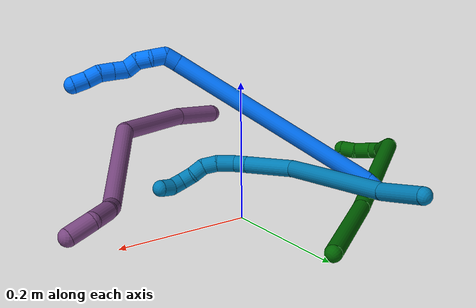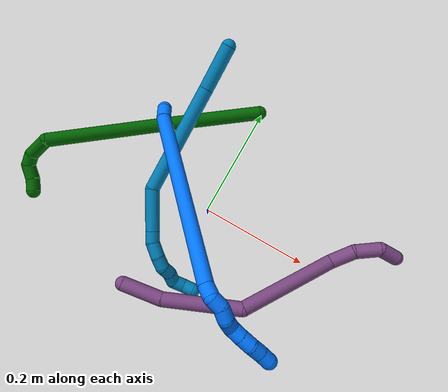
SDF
<sdf version="1.7">
 <world name="default">
  <model name="6">
   <static>0</static>
   <link name="6">
    <collision name="collision-cylinder-e_1_1_4">
     <pose>-0.027351 -0.022806 0.073828 0.29961 -0.340202 -0.051838</pose>
     <geometry><cylinder><radius>0.0125</radius><length>0.163936</length></cylinder></geometry>
     <surface>
      <friction><ode><mu>1.16</mu><mu2>1.16</mu2><slip1>0</slip1><slip2>0</slip2></ode></friction>
      <contact><ode><kp>1e+06</kp><kd>1</kd><max_vel>0</max_vel><min_depth>0.001</min_depth></ode></contact>
     </surface>
    </collision>
    <visual name="visual-cylinder-e_1_1_4">
     <pose>-0.027351 -0.022806 0.073828 0.29961 -0.340202 -0.051838</pose>
     <geometry><cylinder><radius>0.0125</radius><length>0.163936</length></cylinder></geometry>
     <material><ambient>0 0.392157 0.003922 1</ambient></material>
    </visual>
    <collision name="collision-cylinder-e_2_4_5">
     <pose>-0.083004 -0.081049 0.249041 0.336247 -0.25766 -0.043968</pose>
     <geometry><cylinder><radius>0.0125</radius><length>0.222133</length></cylinder></geometry>
     <surface>
      <friction><ode><mu>1.16</mu><mu2>1.16</mu2><slip1>0</slip1><slip2>0</slip2></ode></friction>
      <contact><ode><kp>1e+06</kp><kd>1</kd><max_vel>0</max_vel><min_depth>0.001</min_depth></ode></contact>
     </surface>
    </collision>
    <visual name="visual-cylinder-e_2_4_5">
     <pose>-0.083004 -0.081049 0.249041 0.336247 -0.25766 -0.043968</pose>
     <geometry><cylinder><radius>0.0125</radius><length>0.222133</length></cylinder></geometry>
     <material><ambient>0 0.392157 0.003922 1</ambient></material>
    </visual>
    <collision name="collision-cylinder-e_3_5_6">
     <pose>-0.127585 -0.127918 0.359484 0.900847 -0.840232 -0.425501</pose>
     <geometry><cylinder><radius>0.0125</radius><length>0.043715</length></cylinder></geometry>
     <surface>
      <friction><ode><mu>1.16</mu><mu2>1.16</mu2><slip1>0</slip1><slip2>0</slip2></ode></friction>
      <contact><ode><kp>1e+06</kp><kd>1</kd><max_vel>0</max_vel><min_depth>0.001</min_depth></ode></contact>
     </surface>
    </collision>
    <visual name="visual-cylinder-e_3_5_6">
     <pose>-0.127585 -0.127918 0.359484 0.900847 -0.840232 -0.425501</pose>
     <geometry><cylinder><radius>0.0125</radius><length>0.043715</length></cylinder></geometry>
     <material><ambient>0 0.392157 0.003922 1</ambient></material>
    </visual>
    <collision name="collision-cylinder-e_4_6_7">
     <pose>-0.149194 -0.148634 0.369438 1.47444 -0.519129 -0.473219</pose>
     <geometry><cylinder><radius>0.0125</radius><length>0.021483</length></cylinder></geometry>
     <surface>
      <friction><ode><mu>1.16</mu><mu2>1.16</mu2><slip1>0</slip1><slip2>0</slip2></ode></friction>
      <contact><ode><kp>1e+06</kp><kd>1</kd><max_vel>0</max_vel><min_depth>0.001</min_depth></ode></contact>
     </surface>
    </collision>
    <visual name="visual-cylinder-e_4_6_7">
     <pose>-0.149194 -0.148634 0.369438 1.47444 -0.519129 -0.473219</pose>
     <geometry><cylinder><radius>0.0125</radius><length>0.021483</length></cylinder></geometry>
     <material><ambient>0 0.392157 0.003922 1</ambient></material>
    </visual>
    <collision name="collision-cylinder-e_5_7_8">
     <pose>-0.156193 -0.169329 0.363762 2.09334 -0.126141 -0.217644</pose>
     <geometry><cylinder><radius>0.0125</radius><length>0.02655</length></cylinder></geometry>
     <surface>
      <friction><ode><mu>1.16</mu><mu2>1.16</mu2><slip1>0</slip1><slip2>0</slip2></ode></friction>
      <contact><ode><kp>1e+06</kp><kd>1</kd><max_vel>0</max_vel><min_depth>0.001</min_depth></ode></contact>
     </surface>
    </collision>
    <visual name="visual-cylinder-e_5_7_8">
     <pose>-0.156193 -0.169329 0.363762 2.09334 -0.126141 -0.217644</pose>
     <geometry><cylinder><radius>0.0125</radius><length>0.02655</length></cylinder></geometry>
     <material><ambient>0 0.392157 0.003922 1</ambient></material>
    </visual>
    <collision name="collision-cylinder-e_6_8_2">
     <pose>-0.158885 -0.191376 0.354212 1.84376 -0.09224 -0.121545</pose>
     <geometry><cylinder><radius>0.0125</radius><length>0.022182</length></cylinder></geometry>
     <surface>
      <friction><ode><mu>1.16</mu><mu2>1.16</mu2><slip1>0</slip1><slip2>0</slip2></ode></friction>
      <contact><ode><kp>1e+06</kp><kd>1</kd><max_vel>0</max_vel><min_depth>0.001</min_depth></ode></contact>
     </surface>
    </collision>
    <visual name="visual-cylinder-e_6_8_2">
     <pose>-0.158885 -0.191376 0.354212 1.84376 -0.09224 -0.121545</pose>
     <geometry><cylinder><radius>0.0125</radius><length>0.022182</length></cylinder></geometry>
     <material><ambient>0 0.392157 0.003922 1</ambient></material>
    </visual>
    <collision name="collision-sphere-2">
     <pose>-0.159906 -0.202011 0.351235 0 -0 0</pose>
     <geometry><sphere><radius>0.0125</radius></sphere></geometry>
     <surface>
      <friction><ode><mu>1.16</mu><mu2>1.16</mu2><slip1>0</slip1><slip2>0</slip2></ode></friction>
      <contact><ode><kp>1e+06</kp><kd>1</kd><max_vel>0</max_vel><min_depth>0.001</min_depth></ode></contact>
     </surface>
    </collision>
    <visual name="visual-sphere-2">
     <pose>-0.159906 -0.202011 0.351235 0 -0 0</pose>
     <geometry><sphere><radius>0.0125</radius></sphere></geometry>
     <material><ambient>0 0.392157 0.003922 1</ambient></material>
    </visual>
    <collision name="collision-sphere-4">
     <pose>-0.054702 -0.045612 0.147656 0 -0 0</pose>
     <geometry><sphere><radius>0.0125</radius></sphere></geometry>
     <surface>
      <friction><ode><mu>1.16</mu><mu2>1.16</mu2><slip1>0</slip1><slip2>0</slip2></ode></friction>
      <contact><ode><kp>1e+06</kp><kd>1</kd><max_vel>0</max_vel><min_depth>0.001</min_depth></ode></contact>
     </surface>
    </collision>
    <visual name="visual-sphere-4">
     <pose>-0.054702 -0.045612 0.147656 0 -0 0</pose>
     <geometry><sphere><radius>0.0125</radius></sphere></geometry>
     <material><ambient>0 0.392157 0.003922 1</ambient></material>
    </visual>
    <collision name="collision-sphere-1">
     <geometry><sphere><radius>0.0125</radius></sphere></geometry>
     <surface>
      <friction><ode><mu>1.16</mu><mu2>1.16</mu2><slip1>0</slip1><slip2>0</slip2></ode></friction>
      <contact><ode><kp>1e+06</kp><kd>1</kd><max_vel>0</max_vel><min_depth>0.001</min_depth></ode></contact>
     </surface>
    </collision>
    <visual name="visual-sphere-1">
     <geometry><sphere><radius>0.0125</radius></sphere></geometry>
     <material><ambient>0 0.392157 0.003922 1</ambient></material>
    </visual>
    <collision name="collision-sphere-8">
     <pose>-0.157863 -0.180741 0.357189 0 -0 0</pose>
     <geometry><sphere><radius>0.0125</radius></sphere></geometry>
     <surface>
      <friction><ode><mu>1.16</mu><mu2>1.16</mu2><slip1>0</slip1><slip2>0</slip2></ode></friction>
      <contact><ode><kp>1e+06</kp><kd>1</kd><max_vel>0</max_vel><min_depth>0.001</min_depth></ode></contact>
     </surface>
    </collision>
    <visual name="visual-sphere-8">
     <pose>-0.157863 -0.180741 0.357189 0 -0 0</pose>
     <geometry><sphere><radius>0.0125</radius></sphere></geometry>
     <material><ambient>0 0.392157 0.003922 1</ambient></material>
    </visual>
    <collision name="collision-sphere-5">
     <pose>-0.111305 -0.116485 0.350427 0 -0 0</pose>
     <geometry><sphere><radius>0.0125</radius></sphere></geometry>
     <surface>
      <friction><ode><mu>1.16</mu><mu2>1.16</mu2><slip1>0</slip1><slip2>0</slip2></ode></friction>
      <contact><ode><kp>1e+06</kp><kd>1</kd><max_vel>0</max_vel><min_depth>0.001</min_depth></ode></contact>
     </surface>
    </collision>
    <visual name="visual-sphere-5">
     <pose>-0.111305 -0.116485 0.350427 0 -0 0</pose>
     <geometry><sphere><radius>0.0125</radius></sphere></geometry>
     <material><ambient>0 0.392157 0.003922 1</ambient></material>
    </visual>
    <collision name="collision-sphere-6">
     <pose>-0.143864 -0.13935 0.368541 0 -0 0</pose>
     <geometry><sphere><radius>0.0125</radius></sphere></geometry>
     <surface>
      <friction><ode><mu>1.16</mu><mu2>1.16</mu2><slip1>0</slip1><slip2>0</slip2></ode></friction>
      <contact><ode><kp>1e+06</kp><kd>1</kd><max_vel>0</max_vel><min_depth>0.001</min_depth></ode></contact>
     </surface>
    </collision>
    <visual name="visual-sphere-6">
     <pose>-0.143864 -0.13935 0.368541 0 -0 0</pose>
     <geometry><sphere><radius>0.0125</radius></sphere></geometry>
     <material><ambient>0 0.392157 0.003922 1</ambient></material>
    </visual>
    <collision name="collision-sphere-7">
     <pose>-0.154523 -0.157917 0.370335 0 -0 0</pose>
     <geometry><sphere><radius>0.0125</radius></sphere></geometry>
     <surface>
      <friction><ode><mu>1.16</mu><mu2>1.16</mu2><slip1>0</slip1><slip2>0</slip2></ode></friction>
      <contact><ode><kp>1e+06</kp><kd>1</kd><max_vel>0</max_vel><min_depth>0.001</min_depth></ode></contact>
     </surface>
    </collision>
    <visual name="visual-sphere-7">
     <pose>-0.154523 -0.157917 0.370335 0 -0 0</pose>
     <geometry><sphere><radius>0.0125</radius></sphere></geometry>
     <material><ambient>0 0.392157 0.003922 1</ambient></material>
    </visual>
    <inertial>
     <pose>-0.078751 -0.078537 0.21718 0 -0 0</pose>
     <mass>0.5</mass>
     <inertia><ixx>0.00118</ixx><ixy>0</ixy><ixz>0</ixz><iyy>0.00116</iyy><iyz>0</iyz><izz>0.000803</izz></inertia>
    </inertial>
   </link>
   <pose>-0.005513 0.20108 0.012425 -0.648629 -1.18127 0.972623</pose>
  </model>
  <model name="9">
   <static>0</static>
   <link name="9">
    <collision name="collision-cylinder-e_1_1_4">
     <pose>0.010537 -0.012798 0.036491 0.337317 0.26602 0.045558</pose>
     <geometry><cylinder><radius>0.0125</radius><length>0.080159</length></cylinder></geometry>
     <surface>
      <friction><ode><mu>1.16</mu><mu2>1.16</mu2><slip1>0</slip1><slip2>0</slip2></ode></friction>
      <contact><ode><kp>1e+06</kp><kd>1</kd><max_vel>0</max_vel><min_depth>0.001</min_depth></ode></contact>
     </surface>
    </collision>
    <visual name="visual-cylinder-e_1_1_4">
     <pose>0.010537 -0.012798 0.036491 0.337317 0.26602 0.045558</pose>
     <geometry><cylinder><radius>0.0125</radius><length>0.080159</length></cylinder></geometry>
     <material><ambient>0 0.490196 0.709804 1</ambient></material>
    </visual>
    <collision name="collision-cylinder-e_2_4_5">
     <pose>0.038855 -0.050789 0.165515 0.265817 0.183333 0.024579</pose>
     <geometry><cylinder><radius>0.0125</radius><length>0.195074</length></cylinder></geometry>
     <surface>
      <friction><ode><mu>1.16</mu><mu2>1.16</mu2><slip1>0</slip1><slip2>0</slip2></ode></friction>
      <contact><ode><kp>1e+06</kp><kd>1</kd><max_vel>0</max_vel><min_depth>0.001</min_depth></ode></contact>
     </surface>
    </collision>
    <visual name="visual-cylinder-e_2_4_5">
     <pose>0.038855 -0.050789 0.165515 0.265817 0.183333 0.024579</pose>
     <geometry><cylinder><radius>0.0125</radius><length>0.195074</length></cylinder></geometry>
     <material><ambient>0 0.490196 0.709804 1</ambient></material>
    </visual>
    <collision name="collision-cylinder-e_3_5_6">
     <pose>0.072984 -0.069911 0.290905 -0.182725 0.45503 -0.042417</pose>
     <geometry><cylinder><radius>0.0125</radius><length>0.074393</length></cylinder></geometry>
     <surface>
      <friction><ode><mu>1.16</mu><mu2>1.16</mu2><slip1>0</slip1><slip2>0</slip2></ode></friction>
      <contact><ode><kp>1e+06</kp><kd>1</kd><max_vel>0</max_vel><min_depth>0.001</min_depth></ode></contact>
     </surface>
    </collision>
    <visual name="visual-cylinder-e_3_5_6">
     <pose>0.072984 -0.069911 0.290905 -0.182725 0.45503 -0.042417</pose>
     <geometry><cylinder><radius>0.0125</radius><length>0.074393</length></cylinder></geometry>
     <material><ambient>0 0.490196 0.709804 1</ambient></material>
    </visual>
    <collision name="collision-cylinder-e_4_6_7">
     <pose>0.093809 -0.062213 0.332743 -0.179246 0.455975 -0.041695</pose>
     <geometry><cylinder><radius>0.0125</radius><length>0.020335</length></cylinder></geometry>
     <surface>
      <friction><ode><mu>1.16</mu><mu2>1.16</mu2><slip1>0</slip1><slip2>0</slip2></ode></friction>
      <contact><ode><kp>1e+06</kp><kd>1</kd><max_vel>0</max_vel><min_depth>0.001</min_depth></ode></contact>
     </surface>
    </collision>
    <visual name="visual-cylinder-e_4_6_7">
     <pose>0.093809 -0.062213 0.332743 -0.179246 0.455975 -0.041695</pose>
     <geometry><cylinder><radius>0.0125</radius><length>0.020335</length></cylinder></geometry>
     <material><ambient>0 0.490196 0.709804 1</ambient></material>
    </visual>
    <collision name="collision-cylinder-e_5_7_8">
     <pose>0.105923 -0.054622 0.351399 -0.552392 0.591721 -0.172361</pose>
     <geometry><cylinder><radius>0.0125</radius><length>0.027382</length></cylinder></geometry>
     <surface>
      <friction><ode><mu>1.16</mu><mu2>1.16</mu2><slip1>0</slip1><slip2>0</slip2></ode></friction>
      <contact><ode><kp>1e+06</kp><kd>1</kd><max_vel>0</max_vel><min_depth>0.001</min_depth></ode></contact>
     </surface>
    </collision>
    <visual name="visual-cylinder-e_5_7_8">
     <pose>0.105923 -0.054622 0.351399 -0.552392 0.591721 -0.172361</pose>
     <geometry><cylinder><radius>0.0125</radius><length>0.027382</length></cylinder></geometry>
     <material><ambient>0 0.490196 0.709804 1</ambient></material>
    </visual>
    <collision name="collision-cylinder-e_6_8_9">
     <pose>0.121522 -0.045218 0.367678 -0.480304 0.81871 -0.211693</pose>
     <geometry><cylinder><radius>0.0125</radius><length>0.021806</length></cylinder></geometry>
     <surface>
      <friction><ode><mu>1.16</mu><mu2>1.16</mu2><slip1>0</slip1><slip2>0</slip2></ode></friction>
      <contact><ode><kp>1e+06</kp><kd>1</kd><max_vel>0</max_vel><min_depth>0.001</min_depth></ode></contact>
     </surface>
    </collision>
    <visual name="visual-cylinder-e_6_8_9">
     <pose>0.121522 -0.045218 0.367678 -0.480304 0.81871 -0.211693</pose>
     <geometry><cylinder><radius>0.0125</radius><length>0.021806</length></cylinder></geometry>
     <material><ambient>0 0.490196 0.709804 1</ambient></material>
    </visual>
    <collision name="collision-cylinder-e_7_9_10">
     <pose>0.139149 -0.039715 0.376326 -0.79023 1.27916 -0.601644</pose>
     <geometry><cylinder><radius>0.0125</radius><length>0.020183</length></cylinder></geometry>
     <surface>
      <friction><ode><mu>1.16</mu><mu2>1.16</mu2><slip1>0</slip1><slip2>0</slip2></ode></friction>
      <contact><ode><kp>1e+06</kp><kd>1</kd><max_vel>0</max_vel><min_depth>0.001</min_depth></ode></contact>
     </surface>
    </collision>
    <visual name="visual-cylinder-e_7_9_10">
     <pose>0.139149 -0.039715 0.376326 -0.79023 1.27916 -0.601644</pose>
     <geometry><cylinder><radius>0.0125</radius><length>0.020183</length></cylinder></geometry>
     <material><ambient>0 0.490196 0.709804 1</ambient></material>
    </visual>
    <collision name="collision-cylinder-e_8_10_11">
     <pose>0.157763 -0.037161 0.383187 -0.101799 1.07456 -0.06068</pose>
     <geometry><cylinder><radius>0.0125</radius><length>0.020351</length></cylinder></geometry>
     <surface>
      <friction><ode><mu>1.16</mu><mu2>1.16</mu2><slip1>0</slip1><slip2>0</slip2></ode></friction>
      <contact><ode><kp>1e+06</kp><kd>1</kd><max_vel>0</max_vel><min_depth>0.001</min_depth></ode></contact>
     </surface>
    </collision>
    <visual name="visual-cylinder-e_8_10_11">
     <pose>0.157763 -0.037161 0.383187 -0.101799 1.07456 -0.06068</pose>
     <geometry><cylinder><radius>0.0125</radius><length>0.020351</length></cylinder></geometry>
     <material><ambient>0 0.490196 0.709804 1</ambient></material>
    </visual>
    <collision name="collision-cylinder-e_9_11_12">
     <pose>0.174751 -0.0305 0.387678 -1.62407 0.91562 -0.958564</pose>
     <geometry><cylinder><radius>0.0125</radius><length>0.020278</length></cylinder></geometry>
     <surface>
      <friction><ode><mu>1.16</mu><mu2>1.16</mu2><slip1>0</slip1><slip2>0</slip2></ode></friction>
      <contact><ode><kp>1e+06</kp><kd>1</kd><max_vel>0</max_vel><min_depth>0.001</min_depth></ode></contact>
     </surface>
    </collision>
    <visual name="visual-cylinder-e_9_11_12">
     <pose>0.174751 -0.0305 0.387678 -1.62407 0.91562 -0.958564</pose>
     <geometry><cylinder><radius>0.0125</radius><length>0.020278</length></cylinder></geometry>
     <material><ambient>0 0.490196 0.709804 1</ambient></material>
    </visual>
    <collision name="collision-cylinder-e_10_12_2">
     <pose>0.187994 -0.015776 0.387686 -1.53137 0.54612 -0.525981</pose>
     <geometry><cylinder><radius>0.0125</radius><length>0.020038</length></cylinder></geometry>
     <surface>
      <friction><ode><mu>1.16</mu><mu2>1.16</mu2><slip1>0</slip1><slip2>0</slip2></ode></friction>
      <contact><ode><kp>1e+06</kp><kd>1</kd><max_vel>0</max_vel><min_depth>0.001</min_depth></ode></contact>
     </surface>
    </collision>
    <visual name="visual-cylinder-e_10_12_2">
     <pose>0.187994 -0.015776 0.387686 -1.53137 0.54612 -0.525981</pose>
     <geometry><cylinder><radius>0.0125</radius><length>0.020038</length></cylinder></geometry>
     <material><ambient>0 0.490196 0.709804 1</ambient></material>
    </visual>
    <collision name="collision-sphere-2">
     <pose>0.193198 -0.007221 0.388024 0 -0 0</pose>
     <geometry><sphere><radius>0.0125</radius></sphere></geometry>
     <surface>
      <friction><ode><mu>1.16</mu><mu2>1.16</mu2><slip1>0</slip1><slip2>0</slip2></ode></friction>
      <contact><ode><kp>1e+06</kp><kd>1</kd><max_vel>0</max_vel><min_depth>0.001</min_depth></ode></contact>
     </surface>
    </collision>
    <visual name="visual-sphere-2">
     <pose>0.193198 -0.007221 0.388024 0 -0 0</pose>
     <geometry><sphere><radius>0.0125</radius></sphere></geometry>
     <material><ambient>0 0.490196 0.709804 1</ambient></material>
    </visual>
    <collision name="collision-sphere-12">
     <pose>0.18279 -0.024331 0.387349 0 -0 0</pose>
     <geometry><sphere><radius>0.0125</radius></sphere></geometry>
     <surface>
      <friction><ode><mu>1.16</mu><mu2>1.16</mu2><slip1>0</slip1><slip2>0</slip2></ode></friction>
      <contact><ode><kp>1e+06</kp><kd>1</kd><max_vel>0</max_vel><min_depth>0.001</min_depth></ode></contact>
     </surface>
    </collision>
    <visual name="visual-sphere-12">
     <pose>0.18279 -0.024331 0.387349 0 -0 0</pose>
     <geometry><sphere><radius>0.0125</radius></sphere></geometry>
     <material><ambient>0 0.490196 0.709804 1</ambient></material>
    </visual>
    <collision name="collision-sphere-11">
     <pose>0.166711 -0.036669 0.388007 0 -0 0</pose>
     <geometry><sphere><radius>0.0125</radius></sphere></geometry>
     <surface>
      <friction><ode><mu>1.16</mu><mu2>1.16</mu2><slip1>0</slip1><slip2>0</slip2></ode></friction>
      <contact><ode><kp>1e+06</kp><kd>1</kd><max_vel>0</max_vel><min_depth>0.001</min_depth></ode></contact>
     </surface>
    </collision>
    <visual name="visual-sphere-11">
     <pose>0.166711 -0.036669 0.388007 0 -0 0</pose>
     <geometry><sphere><radius>0.0125</radius></sphere></geometry>
     <material><ambient>0 0.490196 0.709804 1</ambient></material>
    </visual>
    <collision name="collision-sphere-10">
     <pose>0.148815 -0.037653 0.378368 0 -0 0</pose>
     <geometry><sphere><radius>0.0125</radius></sphere></geometry>
     <surface>
      <friction><ode><mu>1.16</mu><mu2>1.16</mu2><slip1>0</slip1><slip2>0</slip2></ode></friction>
      <contact><ode><kp>1e+06</kp><kd>1</kd><max_vel>0</max_vel><min_depth>0.001</min_depth></ode></contact>
     </surface>
    </collision>
    <visual name="visual-sphere-10">
     <pose>0.148815 -0.037653 0.378368 0 -0 0</pose>
     <geometry><sphere><radius>0.0125</radius></sphere></geometry>
     <material><ambient>0 0.490196 0.709804 1</ambient></material>
    </visual>
    <collision name="collision-sphere-9">
     <pose>0.129484 -0.041776 0.374284 0 -0 0</pose>
     <geometry><sphere><radius>0.0125</radius></sphere></geometry>
     <surface>
      <friction><ode><mu>1.16</mu><mu2>1.16</mu2><slip1>0</slip1><slip2>0</slip2></ode></friction>
      <contact><ode><kp>1e+06</kp><kd>1</kd><max_vel>0</max_vel><min_depth>0.001</min_depth></ode></contact>
     </surface>
    </collision>
    <visual name="visual-sphere-9">
     <pose>0.129484 -0.041776 0.374284 0 -0 0</pose>
     <geometry><sphere><radius>0.0125</radius></sphere></geometry>
     <material><ambient>0 0.490196 0.709804 1</ambient></material>
    </visual>
    <collision name="collision-sphere-4">
     <pose>0.021073 -0.025596 0.072981 0 -0 0</pose>
     <geometry><sphere><radius>0.0125</radius></sphere></geometry>
     <surface>
      <friction><ode><mu>1.16</mu><mu2>1.16</mu2><slip1>0</slip1><slip2>0</slip2></ode></friction>
      <contact><ode><kp>1e+06</kp><kd>1</kd><max_vel>0</max_vel><min_depth>0.001</min_depth></ode></contact>
     </surface>
    </collision>
    <visual name="visual-sphere-4">
     <pose>0.021073 -0.025596 0.072981 0 -0 0</pose>
     <geometry><sphere><radius>0.0125</radius></sphere></geometry>
     <material><ambient>0 0.490196 0.709804 1</ambient></material>
    </visual>
    <collision name="collision-sphere-1">
     <geometry><sphere><radius>0.0125</radius></sphere></geometry>
     <surface>
      <friction><ode><mu>1.16</mu><mu2>1.16</mu2><slip1>0</slip1><slip2>0</slip2></ode></friction>
      <contact><ode><kp>1e+06</kp><kd>1</kd><max_vel>0</max_vel><min_depth>0.001</min_depth></ode></contact>
     </surface>
    </collision>
    <visual name="visual-sphere-1">
     <geometry><sphere><radius>0.0125</radius></sphere></geometry>
     <material><ambient>0 0.490196 0.709804 1</ambient></material>
    </visual>
    <collision name="collision-sphere-8">
     <pose>0.11356 -0.04866 0.361072 0 -0 0</pose>
     <geometry><sphere><radius>0.0125</radius></sphere></geometry>
     <surface>
      <friction><ode><mu>1.16</mu><mu2>1.16</mu2><slip1>0</slip1><slip2>0</slip2></ode></friction>
      <contact><ode><kp>1e+06</kp><kd>1</kd><max_vel>0</max_vel><min_depth>0.001</min_depth></ode></contact>
     </surface>
    </collision>
    <visual name="visual-sphere-8">
     <pose>0.11356 -0.04866 0.361072 0 -0 0</pose>
     <geometry><sphere><radius>0.0125</radius></sphere></geometry>
     <material><ambient>0 0.490196 0.709804 1</ambient></material>
    </visual>
    <collision name="collision-sphere-5">
     <pose>0.056637 -0.075983 0.25805 0 -0 0</pose>
     <geometry><sphere><radius>0.0125</radius></sphere></geometry>
     <surface>
      <friction><ode><mu>1.16</mu><mu2>1.16</mu2><slip1>0</slip1><slip2>0</slip2></ode></friction>
      <contact><ode><kp>1e+06</kp><kd>1</kd><max_vel>0</max_vel><min_depth>0.001</min_depth></ode></contact>
     </surface>
    </collision>
    <visual name="visual-sphere-5">
     <pose>0.056637 -0.075983 0.25805 0 -0 0</pose>
     <geometry><sphere><radius>0.0125</radius></sphere></geometry>
     <material><ambient>0 0.490196 0.709804 1</ambient></material>
    </visual>
    <collision name="collision-sphere-6">
     <pose>0.089332 -0.06384 0.323761 0 -0 0</pose>
     <geometry><sphere><radius>0.0125</radius></sphere></geometry>
     <surface>
      <friction><ode><mu>1.16</mu><mu2>1.16</mu2><slip1>0</slip1><slip2>0</slip2></ode></friction>
      <contact><ode><kp>1e+06</kp><kd>1</kd><max_vel>0</max_vel><min_depth>0.001</min_depth></ode></contact>
     </surface>
    </collision>
    <visual name="visual-sphere-6">
     <pose>0.089332 -0.06384 0.323761 0 -0 0</pose>
     <geometry><sphere><radius>0.0125</radius></sphere></geometry>
     <material><ambient>0 0.490196 0.709804 1</ambient></material>
    </visual>
    <collision name="collision-sphere-7">
     <pose>0.098286 -0.060585 0.341726 0 -0 0</pose>
     <geometry><sphere><radius>0.0125</radius></sphere></geometry>
     <surface>
      <friction><ode><mu>1.16</mu><mu2>1.16</mu2><slip1>0</slip1><slip2>0</slip2></ode></friction>
      <contact><ode><kp>1e+06</kp><kd>1</kd><max_vel>0</max_vel><min_depth>0.001</min_depth></ode></contact>
     </surface>
    </collision>
    <visual name="visual-sphere-7">
     <pose>0.098286 -0.060585 0.341726 0 -0 0</pose>
     <geometry><sphere><radius>0.0125</radius></sphere></geometry>
     <material><ambient>0 0.490196 0.709804 1</ambient></material>
    </visual>
    <inertial>
     <pose>0.069283 -0.044747 0.224567 0 -0 0</pose>
     <mass>0.5</mass>
     <inertia>
      <ixx>0.000729</ixx>
      <ixy>0</ixy>
      <ixz>0</ixz>
      <iyy>0.000708</iyy>
      <iyz>0</iyz>
      <izz>4.5e-05</izz>
     </inertia>
    </inertial>
   </link>
   <pose>-0.107364 0.257872 0.086683 1.24509 0.867544 -0.148208</pose>
  </model>
  <model name="14">
   <static>0</static>
   <link name="14">
    <collision name="collision-cylinder-e_1_1_4">
     <pose>0.011012 -0.002391 -0.0031 2.48459 1.22923 2.24181</pose>
     <geometry><cylinder><radius>0.0125</radius><length>0.023375</length></cylinder></geometry>
     <surface>
      <friction><ode><mu>1.16</mu><mu2>1.16</mu2><slip1>0</slip1><slip2>0</slip2></ode></friction>
      <contact><ode><kp>1e+06</kp><kd>1</kd><max_vel>0</max_vel><min_depth>0.001</min_depth></ode></contact>
     </surface>
    </collision>
    <visual name="visual-cylinder-e_1_1_4">
     <pose>0.011012 -0.002391 -0.0031 2.48459 1.22923 2.24181</pose>
     <geometry><cylinder><radius>0.0125</radius><length>0.023375</length></cylinder></geometry>
     <material><ambient>0 0.462745 1 1</ambient></material>
    </visual>
    <collision name="collision-cylinder-e_2_4_5">
     <pose>0.152249 -0.063137 -0.074077 2.43149 0.968593 1.91376</pose>
     <geometry><cylinder><radius>0.0125</radius><length>0.316045</length></cylinder></geometry>
     <surface>
      <friction><ode><mu>1.16</mu><mu2>1.16</mu2><slip1>0</slip1><slip2>0</slip2></ode></friction>
      <contact><ode><kp>1e+06</kp><kd>1</kd><max_vel>0</max_vel><min_depth>0.001</min_depth></ode></contact>
     </surface>
    </collision>
    <visual name="visual-cylinder-e_2_4_5">
     <pose>0.152249 -0.063137 -0.074077 2.43149 0.968593 1.91376</pose>
     <geometry><cylinder><radius>0.0125</radius><length>0.316045</length></cylinder></geometry>
     <material><ambient>0 0.462745 1 1</ambient></material>
    </visual>
    <collision name="collision-cylinder-e_3_5_6">
     <pose>0.289829 -0.125369 -0.147855 2.56019 0.805896 1.91766</pose>
     <geometry><cylinder><radius>0.0125</radius><length>0.020391</length></cylinder></geometry>
     <surface>
      <friction><ode><mu>1.16</mu><mu2>1.16</mu2><slip1>0</slip1><slip2>0</slip2></ode></friction>
      <contact><ode><kp>1e+06</kp><kd>1</kd><max_vel>0</max_vel><min_depth>0.001</min_depth></ode></contact>
     </surface>
    </collision>
    <visual name="visual-cylinder-e_3_5_6">
     <pose>0.289829 -0.125369 -0.147855 2.56019 0.805896 1.91766</pose>
     <geometry><cylinder><radius>0.0125</radius><length>0.020391</length></cylinder></geometry>
     <material><ambient>0 0.462745 1 1</ambient></material>
    </visual>
    <collision name="collision-cylinder-e_4_6_7">
     <pose>0.299504 -0.138013 -0.158138 2.0344 0.232388 0.373298</pose>
     <geometry><cylinder><radius>0.0125</radius><length>0.020144</length></cylinder></geometry>
     <surface>
      <friction><ode><mu>1.16</mu><mu2>1.16</mu2><slip1>0</slip1><slip2>0</slip2></ode></friction>
      <contact><ode><kp>1e+06</kp><kd>1</kd><max_vel>0</max_vel><min_depth>0.001</min_depth></ode></contact>
     </surface>
    </collision>
    <visual name="visual-cylinder-e_4_6_7">
     <pose>0.299504 -0.138013 -0.158138 2.0344 0.232388 0.373298</pose>
     <geometry><cylinder><radius>0.0125</radius><length>0.020144</length></cylinder></geometry>
     <material><ambient>0 0.462745 1 1</ambient></material>
    </visual>
    <collision name="collision-cylinder-e_5_7_8">
     <pose>0.306249 -0.155704 -0.163483 1.6782 0.458058 0.507997</pose>
     <geometry><cylinder><radius>0.0125</radius><length>0.020016</length></cylinder></geometry>
     <surface>
      <friction><ode><mu>1.16</mu><mu2>1.16</mu2><slip1>0</slip1><slip2>0</slip2></ode></friction>
      <contact><ode><kp>1e+06</kp><kd>1</kd><max_vel>0</max_vel><min_depth>0.001</min_depth></ode></contact>
     </surface>
    </collision>
    <visual name="visual-cylinder-e_5_7_8">
     <pose>0.306249 -0.155704 -0.163483 1.6782 0.458058 0.507997</pose>
     <geometry><cylinder><radius>0.0125</radius><length>0.020016</length></cylinder></geometry>
     <material><ambient>0 0.462745 1 1</ambient></material>
    </visual>
    <collision name="collision-cylinder-e_6_8_9">
     <pose>0.310876 -0.174592 -0.163517 1.47795 0.020131 0.018343</pose>
     <geometry><cylinder><radius>0.0125</radius><length>0.020016</length></cylinder></geometry>
     <surface>
      <friction><ode><mu>1.16</mu><mu2>1.16</mu2><slip1>0</slip1><slip2>0</slip2></ode></friction>
      <contact><ode><kp>1e+06</kp><kd>1</kd><max_vel>0</max_vel><min_depth>0.001</min_depth></ode></contact>
     </surface>
    </collision>
    <visual name="visual-cylinder-e_6_8_9">
     <pose>0.310876 -0.174592 -0.163517 1.47795 0.020131 0.018343</pose>
     <geometry><cylinder><radius>0.0125</radius><length>0.020016</length></cylinder></geometry>
     <material><ambient>0 0.462745 1 1</ambient></material>
    </visual>
    <collision name="collision-cylinder-e_7_9_10">
     <pose>0.313436 -0.19282 -0.167709 2.12536 0.238002 0.422985</pose>
     <geometry><cylinder><radius>0.0125</radius><length>0.020008</length></cylinder></geometry>
     <surface>
      <friction><ode><mu>1.16</mu><mu2>1.16</mu2><slip1>0</slip1><slip2>0</slip2></ode></friction>
      <contact><ode><kp>1e+06</kp><kd>1</kd><max_vel>0</max_vel><min_depth>0.001</min_depth></ode></contact>
     </surface>
    </collision>
    <visual name="visual-cylinder-e_7_9_10">
     <pose>0.313436 -0.19282 -0.167709 2.12536 0.238002 0.422985</pose>
     <geometry><cylinder><radius>0.0125</radius><length>0.020008</length></cylinder></geometry>
     <material><ambient>0 0.462745 1 1</ambient></material>
    </visual>
    <collision name="collision-cylinder-e_8_10_11">
     <pose>0.317806 -0.209344 -0.178096 2.13856 0.202456 0.366374</pose>
     <geometry><cylinder><radius>0.0125</radius><length>0.020001</length></cylinder></geometry>
     <surface>
      <friction><ode><mu>1.16</mu><mu2>1.16</mu2><slip1>0</slip1><slip2>0</slip2></ode></friction>
      <contact><ode><kp>1e+06</kp><kd>1</kd><max_vel>0</max_vel><min_depth>0.001</min_depth></ode></contact>
     </surface>
    </collision>
    <visual name="visual-cylinder-e_8_10_11">
     <pose>0.317806 -0.209344 -0.178096 2.13856 0.202456 0.366374</pose>
     <geometry><cylinder><radius>0.0125</radius><length>0.020001</length></cylinder></geometry>
     <material><ambient>0 0.462745 1 1</ambient></material>
    </visual>
    <collision name="collision-cylinder-e_9_11_12">
     <pose>0.319879 -0.227175 -0.186265 1.86511 0.006204 0.008363</pose>
     <geometry><cylinder><radius>0.0125</radius><length>0.020004</length></cylinder></geometry>
     <surface>
      <friction><ode><mu>1.16</mu><mu2>1.16</mu2><slip1>0</slip1><slip2>0</slip2></ode></friction>
      <contact><ode><kp>1e+06</kp><kd>1</kd><max_vel>0</max_vel><min_depth>0.001</min_depth></ode></contact>
     </surface>
    </collision>
    <visual name="visual-cylinder-e_9_11_12">
     <pose>0.319879 -0.227175 -0.186265 1.86511 0.006204 0.008363</pose>
     <geometry><cylinder><radius>0.0125</radius><length>0.020004</length></cylinder></geometry>
     <material><ambient>0 0.462745 1 1</ambient></material>
    </visual>
    <collision name="collision-cylinder-e_10_12_2">
     <pose>0.320974 -0.246062 -0.192653 1.92888 0.103511 0.149113</pose>
     <geometry><cylinder><radius>0.0125</radius><length>0.020001</length></cylinder></geometry>
     <surface>
      <friction><ode><mu>1.16</mu><mu2>1.16</mu2><slip1>0</slip1><slip2>0</slip2></ode></friction>
      <contact><ode><kp>1e+06</kp><kd>1</kd><max_vel>0</max_vel><min_depth>0.001</min_depth></ode></contact>
     </surface>
    </collision>
    <visual name="visual-cylinder-e_10_12_2">
     <pose>0.320974 -0.246062 -0.192653 1.92888 0.103511 0.149113</pose>
     <geometry><cylinder><radius>0.0125</radius><length>0.020001</length></cylinder></geometry>
     <material><ambient>0 0.462745 1 1</ambient></material>
    </visual>
    <collision name="collision-sphere-2">
     <pose>0.322007 -0.255378 -0.196139 0 -0 0</pose>
     <geometry><sphere><radius>0.0125</radius></sphere></geometry>
     <surface>
      <friction><ode><mu>1.16</mu><mu2>1.16</mu2><slip1>0</slip1><slip2>0</slip2></ode></friction>
      <contact><ode><kp>1e+06</kp><kd>1</kd><max_vel>0</max_vel><min_depth>0.001</min_depth></ode></contact>
     </surface>
    </collision>
    <visual name="visual-sphere-2">
     <pose>0.322007 -0.255378 -0.196139 0 -0 0</pose>
     <geometry><sphere><radius>0.0125</radius></sphere></geometry>
     <material><ambient>0 0.462745 1 1</ambient></material>
    </visual>
    <collision name="collision-sphere-12">
     <pose>0.319941 -0.236747 -0.189167 0 -0 0</pose>
     <geometry><sphere><radius>0.0125</radius></sphere></geometry>
     <surface>
      <friction><ode><mu>1.16</mu><mu2>1.16</mu2><slip1>0</slip1><slip2>0</slip2></ode></friction>
      <contact><ode><kp>1e+06</kp><kd>1</kd><max_vel>0</max_vel><min_depth>0.001</min_depth></ode></contact>
     </surface>
    </collision>
    <visual name="visual-sphere-12">
     <pose>0.319941 -0.236747 -0.189167 0 -0 0</pose>
     <geometry><sphere><radius>0.0125</radius></sphere></geometry>
     <material><ambient>0 0.462745 1 1</ambient></material>
    </visual>
    <collision name="collision-sphere-11">
     <pose>0.319817 -0.217603 -0.183364 0 -0 0</pose>
     <geometry><sphere><radius>0.0125</radius></sphere></geometry>
     <surface>
      <friction><ode><mu>1.16</mu><mu2>1.16</mu2><slip1>0</slip1><slip2>0</slip2></ode></friction>
      <contact><ode><kp>1e+06</kp><kd>1</kd><max_vel>0</max_vel><min_depth>0.001</min_depth></ode></contact>
     </surface>
    </collision>
    <visual name="visual-sphere-11">
     <pose>0.319817 -0.217603 -0.183364 0 -0 0</pose>
     <geometry><sphere><radius>0.0125</radius></sphere></geometry>
     <material><ambient>0 0.462745 1 1</ambient></material>
    </visual>
    <collision name="collision-sphere-10">
     <pose>0.315795 -0.201085 -0.172828 0 -0 0</pose>
     <geometry><sphere><radius>0.0125</radius></sphere></geometry>
     <surface>
      <friction><ode><mu>1.16</mu><mu2>1.16</mu2><slip1>0</slip1><slip2>0</slip2></ode></friction>
      <contact><ode><kp>1e+06</kp><kd>1</kd><max_vel>0</max_vel><min_depth>0.001</min_depth></ode></contact>
     </surface>
    </collision>
    <visual name="visual-sphere-10">
     <pose>0.315795 -0.201085 -0.172828 0 -0 0</pose>
     <geometry><sphere><radius>0.0125</radius></sphere></geometry>
     <material><ambient>0 0.462745 1 1</ambient></material>
    </visual>
    <collision name="collision-sphere-9">
     <pose>0.311078 -0.184555 -0.16259 0 -0 0</pose>
     <geometry><sphere><radius>0.0125</radius></sphere></geometry>
     <surface>
      <friction><ode><mu>1.16</mu><mu2>1.16</mu2><slip1>0</slip1><slip2>0</slip2></ode></friction>
      <contact><ode><kp>1e+06</kp><kd>1</kd><max_vel>0</max_vel><min_depth>0.001</min_depth></ode></contact>
     </surface>
    </collision>
    <visual name="visual-sphere-9">
     <pose>0.311078 -0.184555 -0.16259 0 -0 0</pose>
     <geometry><sphere><radius>0.0125</radius></sphere></geometry>
     <material><ambient>0 0.462745 1 1</ambient></material>
    </visual>
    <collision name="collision-sphere-4">
     <pose>0.022024 -0.004782 -0.0062 0 -0 0</pose>
     <geometry><sphere><radius>0.0125</radius></sphere></geometry>
     <surface>
      <friction><ode><mu>1.16</mu><mu2>1.16</mu2><slip1>0</slip1><slip2>0</slip2></ode></friction>
      <contact><ode><kp>1e+06</kp><kd>1</kd><max_vel>0</max_vel><min_depth>0.001</min_depth></ode></contact>
     </surface>
    </collision>
    <visual name="visual-sphere-4">
     <pose>0.022024 -0.004782 -0.0062 0 -0 0</pose>
     <geometry><sphere><radius>0.0125</radius></sphere></geometry>
     <material><ambient>0 0.462745 1 1</ambient></material>
    </visual>
    <collision name="collision-sphere-1">
     <geometry><sphere><radius>0.0125</radius></sphere></geometry>
     <surface>
      <friction><ode><mu>1.16</mu><mu2>1.16</mu2><slip1>0</slip1><slip2>0</slip2></ode></friction>
      <contact><ode><kp>1e+06</kp><kd>1</kd><max_vel>0</max_vel><min_depth>0.001</min_depth></ode></contact>
     </surface>
    </collision>
    <visual name="visual-sphere-1">
     <geometry><sphere><radius>0.0125</radius></sphere></geometry>
     <material><ambient>0 0.462745 1 1</ambient></material>
    </visual>
    <collision name="collision-sphere-8">
     <pose>0.310675 -0.164629 -0.164445 0 -0 0</pose>
     <geometry><sphere><radius>0.0125</radius></sphere></geometry>
     <surface>
      <friction><ode><mu>1.16</mu><mu2>1.16</mu2><slip1>0</slip1><slip2>0</slip2></ode></friction>
      <contact><ode><kp>1e+06</kp><kd>1</kd><max_vel>0</max_vel><min_depth>0.001</min_depth></ode></contact>
     </surface>
    </collision>
    <visual name="visual-sphere-8">
     <pose>0.310675 -0.164629 -0.164445 0 -0 0</pose>
     <geometry><sphere><radius>0.0125</radius></sphere></geometry>
     <material><ambient>0 0.462745 1 1</ambient></material>
    </visual>
    <collision name="collision-sphere-5">
     <pose>0.282474 -0.121492 -0.141955 0 -0 0</pose>
     <geometry><sphere><radius>0.0125</radius></sphere></geometry>
     <surface>
      <friction><ode><mu>1.16</mu><mu2>1.16</mu2><slip1>0</slip1><slip2>0</slip2></ode></friction>
      <contact><ode><kp>1e+06</kp><kd>1</kd><max_vel>0</max_vel><min_depth>0.001</min_depth></ode></contact>
     </surface>
    </collision>
    <visual name="visual-sphere-5">
     <pose>0.282474 -0.121492 -0.141955 0 -0 0</pose>
     <geometry><sphere><radius>0.0125</radius></sphere></geometry>
     <material><ambient>0 0.462745 1 1</ambient></material>
    </visual>
    <collision name="collision-sphere-6">
     <pose>0.297185 -0.129246 -0.153755 0 -0 0</pose>
     <geometry><sphere><radius>0.0125</radius></sphere></geometry>
     <surface>
      <friction><ode><mu>1.16</mu><mu2>1.16</mu2><slip1>0</slip1><slip2>0</slip2></ode></friction>
      <contact><ode><kp>1e+06</kp><kd>1</kd><max_vel>0</max_vel><min_depth>0.001</min_depth></ode></contact>
     </surface>
    </collision>
    <visual name="visual-sphere-6">
     <pose>0.297185 -0.129246 -0.153755 0 -0 0</pose>
     <geometry><sphere><radius>0.0125</radius></sphere></geometry>
     <material><ambient>0 0.462745 1 1</ambient></material>
    </visual>
    <collision name="collision-sphere-7">
     <pose>0.301824 -0.14678 -0.162521 0 -0 0</pose>
     <geometry><sphere><radius>0.0125</radius></sphere></geometry>
     <surface>
      <friction><ode><mu>1.16</mu><mu2>1.16</mu2><slip1>0</slip1><slip2>0</slip2></ode></friction>
      <contact><ode><kp>1e+06</kp><kd>1</kd><max_vel>0</max_vel><min_depth>0.001</min_depth></ode></contact>
     </surface>
    </collision>
    <visual name="visual-sphere-7">
     <pose>0.301824 -0.14678 -0.162521 0 -0 0</pose>
     <geometry><sphere><radius>0.0125</radius></sphere></geometry>
     <material><ambient>0 0.462745 1 1</ambient></material>
    </visual>
    <inertial>
     <pose>0.196233 -0.098937 -0.101453 0 -0 0</pose>
     <mass>0.5</mass>
     <inertia>
      <ixx>0.000944</ixx>
      <ixy>0</ixy>
      <ixz>0</ixz>
      <iyy>0.003406</iyy>
      <iyz>0</iyz>
      <izz>-0.001212</izz>
     </inertia>
    </inertial>
   </link>
   <pose>-0.155315 0.118456 0.042283 2.36203 -0.6137 -1.49448</pose>
  </model>
  <model name="20">
   <static>0</static>
   <link name="20">
    <collision name="collision-cylinder-e_1_1_4">
     <pose>0.003361 0.006512 0.033999 -0.189242 0.096795 -0.009193</pose>
     <geometry><cylinder><radius>0.0125</radius><length>0.06956</length></cylinder></geometry>
     <surface>
      <friction><ode><mu>1.16</mu><mu2>1.16</mu2><slip1>0</slip1><slip2>0</slip2></ode></friction>
      <contact><ode><kp>1e+06</kp><kd>1</kd><max_vel>0</max_vel><min_depth>0.001</min_depth></ode></contact>
     </surface>
    </collision>
    <visual name="visual-cylinder-e_1_1_4">
     <pose>0.003361 0.006512 0.033999 -0.189242 0.096795 -0.009193</pose>
     <geometry><cylinder><radius>0.0125</radius><length>0.06956</length></cylinder></geometry>
     <material><ambient>0.478431 0.278431 0.509804 1</ambient></material>
    </visual>
    <collision name="collision-cylinder-e_2_4_5">
     <pose>0.020287 0.0392 0.127051 -0.417236 0.206985 -0.043968</pose>
     <geometry><cylinder><radius>0.0125</radius><length>0.132006</length></cylinder></geometry>
     <surface>
      <friction><ode><mu>1.16</mu><mu2>1.16</mu2><slip1>0</slip1><slip2>0</slip2></ode></friction>
      <contact><ode><kp>1e+06</kp><kd>1</kd><max_vel>0</max_vel><min_depth>0.001</min_depth></ode></contact>
     </surface>
    </collision>
    <visual name="visual-cylinder-e_2_4_5">
     <pose>0.020287 0.0392 0.127051 -0.417236 0.206985 -0.043968</pose>
     <geometry><cylinder><radius>0.0125</radius><length>0.132006</length></cylinder></geometry>
     <material><ambient>0.478431 0.278431 0.509804 1</ambient></material>
    </visual>
    <collision name="collision-cylinder-e_3_5_6">
     <pose>0.08855 0.120239 0.227508 -0.924312 0.672181 -0.344592</pose>
     <geometry><cylinder><radius>0.0125</radius><length>0.175685</length></cylinder></geometry>
     <surface>
      <friction><ode><mu>1.16</mu><mu2>1.16</mu2><slip1>0</slip1><slip2>0</slip2></ode></friction>
      <contact><ode><kp>1e+06</kp><kd>1</kd><max_vel>0</max_vel><min_depth>0.001</min_depth></ode></contact>
     </surface>
    </collision>
    <visual name="visual-cylinder-e_3_5_6">
     <pose>0.08855 0.120239 0.227508 -0.924312 0.672181 -0.344592</pose>
     <geometry><cylinder><radius>0.0125</radius><length>0.175685</length></cylinder></geometry>
     <material><ambient>0.478431 0.278431 0.509804 1</ambient></material>
    </visual>
    <collision name="collision-cylinder-e_4_6_7">
     <pose>0.146019 0.193204 0.280835 -0.98829 0.127095 -0.068535</pose>
     <geometry><cylinder><radius>0.0125</radius><length>0.043703</length></cylinder></geometry>
     <surface>
      <friction><ode><mu>1.16</mu><mu2>1.16</mu2><slip1>0</slip1><slip2>0</slip2></ode></friction>
      <contact><ode><kp>1e+06</kp><kd>1</kd><max_vel>0</max_vel><min_depth>0.001</min_depth></ode></contact>
     </surface>
    </collision>
    <visual name="visual-cylinder-e_4_6_7">
     <pose>0.146019 0.193204 0.280835 -0.98829 0.127095 -0.068535</pose>
     <geometry><cylinder><radius>0.0125</radius><length>0.043703</length></cylinder></geometry>
     <material><ambient>0.478431 0.278431 0.509804 1</ambient></material>
    </visual>
    <collision name="collision-cylinder-e_5_7_8">
     <pose>0.154939 0.223094 0.309538 -0.612513 0.291369 -0.092723</pose>
     <geometry><cylinder><radius>0.0125</radius><length>0.042818</length></cylinder></geometry>
     <surface>
      <friction><ode><mu>1.16</mu><mu2>1.16</mu2><slip1>0</slip1><slip2>0</slip2></ode></friction>
      <contact><ode><kp>1e+06</kp><kd>1</kd><max_vel>0</max_vel><min_depth>0.001</min_depth></ode></contact>
     </surface>
    </collision>
    <visual name="visual-cylinder-e_5_7_8">
     <pose>0.154939 0.223094 0.309538 -0.612513 0.291369 -0.092723</pose>
     <geometry><cylinder><radius>0.0125</radius><length>0.042818</length></cylinder></geometry>
     <material><ambient>0.478431 0.278431 0.509804 1</ambient></material>
    </visual>
    <collision name="collision-cylinder-e_6_8_2">
     <pose>0.169837 0.233224 0.342091 0.104863 0.504033 0.027024</pose>
     <geometry><cylinder><radius>0.0125</radius><length>0.036228</length></cylinder></geometry>
     <surface>
      <friction><ode><mu>1.16</mu><mu2>1.16</mu2><slip1>0</slip1><slip2>0</slip2></ode></friction>
      <contact><ode><kp>1e+06</kp><kd>1</kd><max_vel>0</max_vel><min_depth>0.001</min_depth></ode></contact>
     </surface>
    </collision>
    <visual name="visual-cylinder-e_6_8_2">
     <pose>0.169837 0.233224 0.342091 0.104863 0.504033 0.027024</pose>
     <geometry><cylinder><radius>0.0125</radius><length>0.036228</length></cylinder></geometry>
     <material><ambient>0.478431 0.278431 0.509804 1</ambient></material>
    </visual>
    <collision name="collision-sphere-2">
     <pose>0.178586 0.231564 0.357866 0 -0 0</pose>
     <geometry><sphere><radius>0.0125</radius></sphere></geometry>
     <surface>
      <friction><ode><mu>1.16</mu><mu2>1.16</mu2><slip1>0</slip1><slip2>0</slip2></ode></friction>
      <contact><ode><kp>1e+06</kp><kd>1</kd><max_vel>0</max_vel><min_depth>0.001</min_depth></ode></contact>
     </surface>
    </collision>
    <visual name="visual-sphere-2">
     <pose>0.178586 0.231564 0.357866 0 -0 0</pose>
     <geometry><sphere><radius>0.0125</radius></sphere></geometry>
     <material><ambient>0.478431 0.278431 0.509804 1</ambient></material>
    </visual>
    <collision name="collision-sphere-4">
     <pose>0.006723 0.013024 0.067998 0 -0 0</pose>
     <geometry><sphere><radius>0.0125</radius></sphere></geometry>
     <surface>
      <friction><ode><mu>1.16</mu><mu2>1.16</mu2><slip1>0</slip1><slip2>0</slip2></ode></friction>
      <contact><ode><kp>1e+06</kp><kd>1</kd><max_vel>0</max_vel><min_depth>0.001</min_depth></ode></contact>
     </surface>
    </collision>
    <visual name="visual-sphere-4">
     <pose>0.006723 0.013024 0.067998 0 -0 0</pose>
     <geometry><sphere><radius>0.0125</radius></sphere></geometry>
     <material><ambient>0.478431 0.278431 0.509804 1</ambient></material>
    </visual>
    <collision name="collision-sphere-1">
     <geometry><sphere><radius>0.0125</radius></sphere></geometry>
     <surface>
      <friction><ode><mu>1.16</mu><mu2>1.16</mu2><slip1>0</slip1><slip2>0</slip2></ode></friction>
      <contact><ode><kp>1e+06</kp><kd>1</kd><max_vel>0</max_vel><min_depth>0.001</min_depth></ode></contact>
     </surface>
    </collision>
    <visual name="visual-sphere-1">
     <geometry><sphere><radius>0.0125</radius></sphere></geometry>
     <material><ambient>0.478431 0.278431 0.509804 1</ambient></material>
    </visual>
    <collision name="collision-sphere-8">
     <pose>0.161089 0.234884 0.326317 0 -0 0</pose>
     <geometry><sphere><radius>0.0125</radius></sphere></geometry>
     <surface>
      <friction><ode><mu>1.16</mu><mu2>1.16</mu2><slip1>0</slip1><slip2>0</slip2></ode></friction>
      <contact><ode><kp>1e+06</kp><kd>1</kd><max_vel>0</max_vel><min_depth>0.001</min_depth></ode></contact>
     </surface>
    </collision>
    <visual name="visual-sphere-8">
     <pose>0.161089 0.234884 0.326317 0 -0 0</pose>
     <geometry><sphere><radius>0.0125</radius></sphere></geometry>
     <material><ambient>0.478431 0.278431 0.509804 1</ambient></material>
    </visual>
    <collision name="collision-sphere-5">
     <pose>0.033851 0.065376 0.186103 0 -0 0</pose>
     <geometry><sphere><radius>0.0125</radius></sphere></geometry>
     <surface>
      <friction><ode><mu>1.16</mu><mu2>1.16</mu2><slip1>0</slip1><slip2>0</slip2></ode></friction>
      <contact><ode><kp>1e+06</kp><kd>1</kd><max_vel>0</max_vel><min_depth>0.001</min_depth></ode></contact>
     </surface>
    </collision>
    <visual name="visual-sphere-5">
     <pose>0.033851 0.065376 0.186103 0 -0 0</pose>
     <geometry><sphere><radius>0.0125</radius></sphere></geometry>
     <material><ambient>0.478431 0.278431 0.509804 1</ambient></material>
    </visual>
    <collision name="collision-sphere-6">
     <pose>0.143249 0.175103 0.268912 0 -0 0</pose>
     <geometry><sphere><radius>0.0125</radius></sphere></geometry>
     <surface>
      <friction><ode><mu>1.16</mu><mu2>1.16</mu2><slip1>0</slip1><slip2>0</slip2></ode></friction>
      <contact><ode><kp>1e+06</kp><kd>1</kd><max_vel>0</max_vel><min_depth>0.001</min_depth></ode></contact>
     </surface>
    </collision>
    <visual name="visual-sphere-6">
     <pose>0.143249 0.175103 0.268912 0 -0 0</pose>
     <geometry><sphere><radius>0.0125</radius></sphere></geometry>
     <material><ambient>0.478431 0.278431 0.509804 1</ambient></material>
    </visual>
    <collision name="collision-sphere-7">
     <pose>0.148789 0.211304 0.292759 0 -0 0</pose>
     <geometry><sphere><radius>0.0125</radius></sphere></geometry>
     <surface>
      <friction><ode><mu>1.16</mu><mu2>1.16</mu2><slip1>0</slip1><slip2>0</slip2></ode></friction>
      <contact><ode><kp>1e+06</kp><kd>1</kd><max_vel>0</max_vel><min_depth>0.001</min_depth></ode></contact>
     </surface>
    </collision>
    <visual name="visual-sphere-7">
     <pose>0.148789 0.211304 0.292759 0 -0 0</pose>
     <geometry><sphere><radius>0.0125</radius></sphere></geometry>
     <material><ambient>0.478431 0.278431 0.509804 1</ambient></material>
    </visual>
    <inertial>
     <pose>0.075275 0.106394 0.194053 0 -0 0</pose>
     <mass>0.5</mass>
     <inertia>
      <ixx>0.000465</ixx>
      <ixy>0</ixy>
      <ixz>0</ixz>
      <iyy>0.000452</iyy>
      <iyz>0</iyz>
      <izz>-0.000689</izz>
     </inertia>
    </inertial>
   </link>
   <pose>-0.062363 -0.171456 0.106055 1.1263 1.18909 1.11012</pose>
  </model>
 </world>
</sdf>
